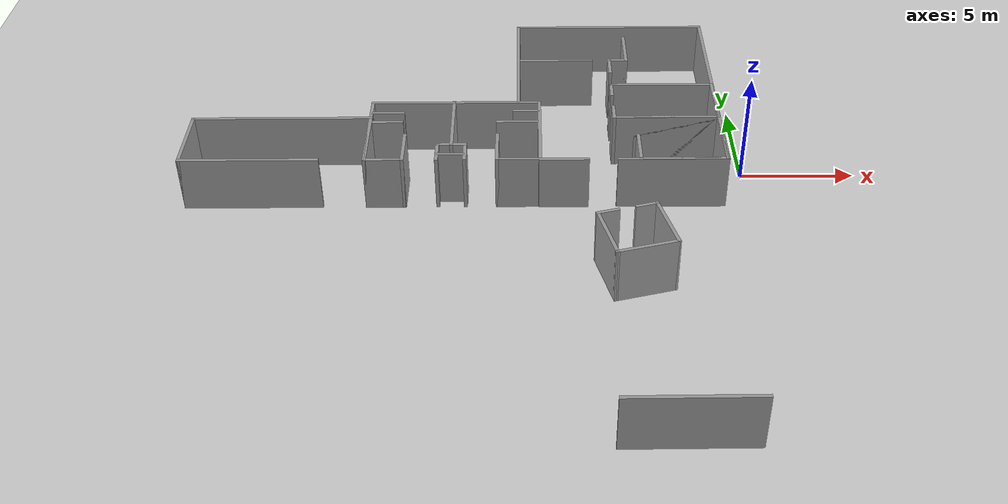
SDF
<sdf version="1.6">
 <world name="default">
  <model name="ground_plane">
   <static>1</static>
   <link name="link">
    <collision name="collision">
     <geometry><plane><normal>0 0 1</normal><size>100 100</size></plane></geometry>
     <surface><friction><ode><mu>100</mu><mu2>50</mu2></ode></friction></surface>
    </collision>
    <visual name="visual">
     <cast_shadows>0</cast_shadows>
     <geometry><plane><normal>0 0 1</normal><size>100 100</size></plane></geometry>
     <material>
      <script><uri>file://media/materials/scripts/gazebo.material</uri><name>Gazebo/Grey</name></script>
     </material>
    </visual>
   </link>
  </model>
  <model name="201/202">
   <pose>-12.7229 0.167067 0 0 -0 0</pose>
   <link name="Wall_10">
    <collision name="Wall_10_Collision">
     <geometry><box><size>7.62002 0.15 2.5</size></box></geometry>
     <pose>0 0 1.25 0 -0 0</pose>
    </collision>
    <visual name="Wall_10_Visual">
     <pose>0 0 1.25 0 -0 0</pose>
     <geometry><box><size>7.62002 0.15 2.5</size></box></geometry>
     <material>
      <script><uri>file://media/materials/scripts/gazebo.material</uri><name>Gazebo/Grey</name></script>
      <ambient>1 1 1 1</ambient>
     </material>
     <meta><layer>0</layer></meta>
    </visual>
    <pose>-0.004655 2.1906 0 0 -0 3.14159</pose>
   </link>
   <link name="Wall_11">
    <collision name="Wall_11_Collision">
     <geometry><box><size>4.572 0.15 2.5</size></box></geometry>
     <pose>0 0 1.25 0 -0 0</pose>
    </collision>
    <visual name="Wall_11_Visual">
     <pose>0 0 1.25 0 -0 0</pose>
     <geometry><box><size>4.572 0.15 2.5</size></box></geometry>
     <material>
      <script><uri>file://media/materials/scripts/gazebo.material</uri><name>Gazebo/Grey</name></script>
      <ambient>1 1 1 1</ambient>
     </material>
     <meta><layer>0</layer></meta>
    </visual>
    <pose>-3.73965 -0.020398 0 0 -0 -1.5708</pose>
   </link>
   <link name="Wall_13">
    <collision name="Wall_13_Collision">
     <geometry><box><size>2 0.15 2.5</size></box></geometry>
     <pose>0 0 1.25 0 -0 0</pose>
    </collision>
    <visual name="Wall_13_Visual">
     <pose>0 0 1.25 0 -0 0</pose>
     <geometry><box><size>2 0.15 2.5</size></box></geometry>
     <material>
      <script><uri>file://media/materials/scripts/gazebo.material</uri><name>Gazebo/Grey</name></script>
      <ambient>1 1 1 1</ambient>
     </material>
     <meta><layer>0</layer></meta>
    </visual>
    <pose>2.80535 -2.23095 0 0 -0 3.14159</pose>
   </link>
   <link name="Wall_14">
    <collision name="Wall_14_Collision">
     <geometry><box><size>2 0.15 2.5</size></box></geometry>
     <pose>0 0 1.25 0 -0 0</pose>
    </collision>
    <visual name="Wall_14_Visual">
     <pose>0 0 1.25 0 -0 0</pose>
     <geometry><box><size>2 0.15 2.5</size></box></geometry>
     <material>
      <script><uri>file://media/materials/scripts/gazebo.material</uri><name>Gazebo/Grey</name></script>
      <ambient>1 1 1 1</ambient>
     </material>
     <meta><layer>0</layer></meta>
    </visual>
    <pose>1.88035 -1.30595 0 0 -0 1.5708</pose>
   </link>
   <link name="Wall_16">
    <collision name="Wall_16_Collision">
     <geometry><box><size>3.5 0.15 2.5</size></box></geometry>
     <pose>0 0 1.25 0 -0 0</pose>
    </collision>
    <visual name="Wall_16_Visual">
     <pose>0 0 1.25 0 -0 0</pose>
     <geometry><box><size>3.5 0.15 2.5</size></box></geometry>
     <material>
      <script><uri>file://media/materials/scripts/gazebo.material</uri><name>Gazebo/Grey</name></script>
      <ambient>1 1 1 1</ambient>
     </material>
     <meta><layer>0</layer></meta>
    </visual>
    <pose>-0.091763 0.556398 0 0 -0 -1.5708</pose>
   </link>
   <link name="Wall_17">
    <collision name="Wall_17_Collision">
     <geometry><box><size>0.75 0.15 2.5</size></box></geometry>
     <pose>0 0 1.25 0 -0 0</pose>
    </collision>
    <visual name="Wall_17_Visual">
     <pose>0 0 1.25 0 -0 0</pose>
     <geometry><box><size>0.75 0.15 2.5</size></box></geometry>
     <material>
      <script><uri>file://media/materials/scripts/gazebo.material</uri><name>Gazebo/Grey</name></script>
      <ambient>1 1 1 1</ambient>
     </material>
     <meta><layer>0</layer></meta>
    </visual>
    <pose>0.208236 -1.1186 0 0 -0 0</pose>
   </link>
   <link name="Wall_18">
    <collision name="Wall_18_Collision">
     <geometry><box><size>1.25 0.15 2.5</size></box></geometry>
     <pose>0 0 1.25 0 -0 0</pose>
    </collision>
    <visual name="Wall_18_Visual">
     <pose>0 0 1.25 0 -0 0</pose>
     <geometry><box><size>1.25 0.15 2.5</size></box></geometry>
     <material>
      <script><uri>file://media/materials/scripts/gazebo.material</uri><name>Gazebo/Grey</name></script>
      <ambient>1 1 1 1</ambient>
     </material>
     <meta><layer>0</layer></meta>
    </visual>
    <pose>0.508237 -1.6686 0 0 -0 -1.5708</pose>
   </link>
   <link name="Wall_20">
    <collision name="Wall_20_Collision">
     <geometry><box><size>0.75 0.15 2.5</size></box></geometry>
     <pose>0 0 1.25 0 -0 0</pose>
    </collision>
    <visual name="Wall_20_Visual">
     <pose>0 0 1.25 0 -0 0</pose>
     <geometry><box><size>0.75 0.15 2.5</size></box></geometry>
     <material>
      <script><uri>file://media/materials/scripts/gazebo.material</uri><name>Gazebo/Grey</name></script>
      <ambient>1 1 1 1</ambient>
     </material>
     <meta><layer>0</layer></meta>
    </visual>
    <pose>-0.391763 -1.1186 0 0 -0 3.14159</pose>
   </link>
   <link name="Wall_21">
    <collision name="Wall_21_Collision">
     <geometry><box><size>1.25 0.15 2.5</size></box></geometry>
     <pose>0 0 1.25 0 -0 0</pose>
    </collision>
    <visual name="Wall_21_Visual">
     <pose>0 0 1.25 0 -0 0</pose>
     <geometry><box><size>1.25 0.15 2.5</size></box></geometry>
     <material>
      <script><uri>file://media/materials/scripts/gazebo.material</uri><name>Gazebo/Grey</name></script>
      <ambient>1 1 1 1</ambient>
     </material>
     <meta><layer>0</layer></meta>
    </visual>
    <pose>-0.691764 -1.6686 0 0 -0 -1.5708</pose>
   </link>
   <link name="Wall_23">
    <collision name="Wall_23_Collision">
     <geometry><box><size>1.75 0.15 2.5</size></box></geometry>
     <pose>0 0 1.25 0 -0 0</pose>
    </collision>
    <visual name="Wall_23_Visual">
     <pose>0 0 1.25 0 -0 0</pose>
     <geometry><box><size>1.75 0.15 2.5</size></box></geometry>
     <material>
      <script><uri>file://media/materials/scripts/gazebo.material</uri><name>Gazebo/Grey</name></script>
      <ambient>1 1 1 1</ambient>
     </material>
     <meta><layer>0</layer></meta>
    </visual>
    <pose>-2.93966 -2.2314 0 0 -0 0</pose>
   </link>
   <link name="Wall_24">
    <collision name="Wall_24_Collision">
     <geometry><box><size>2 0.15 2.5</size></box></geometry>
     <pose>0 0 1.25 0 -0 0</pose>
    </collision>
    <visual name="Wall_24_Visual">
     <pose>0 0 1.25 0 -0 0</pose>
     <geometry><box><size>2 0.15 2.5</size></box></geometry>
     <material>
      <script><uri>file://media/materials/scripts/gazebo.material</uri><name>Gazebo/Grey</name></script>
      <ambient>1 1 1 1</ambient>
     </material>
     <meta><layer>0</layer></meta>
    </visual>
    <pose>-2.13965 -1.3064 0 0 -0 1.5708</pose>
   </link>
   <link name="Wall_28">
    <collision name="Wall_28_Collision">
     <geometry><box><size>1.5 0.15 2.5</size></box></geometry>
     <pose>0 0 1.25 0 -0 0</pose>
    </collision>
    <visual name="Wall_28_Visual">
     <pose>0 0 1.25 0 -0 0</pose>
     <geometry><box><size>1.5 0.15 2.5</size></box></geometry>
     <material>
      <script><uri>file://media/materials/scripts/gazebo.material</uri><name>Gazebo/Grey</name></script>
      <ambient>1 1 1 1</ambient>
     </material>
     <meta><layer>0</layer></meta>
    </visual>
    <pose>-3.01876 1.34811 0 0 -0 0</pose>
   </link>
   <link name="Wall_30">
    <collision name="Wall_30_Collision">
     <geometry><box><size>1.5 0.15 2.5</size></box></geometry>
     <pose>0 0 1.25 0 -0 0</pose>
    </collision>
    <visual name="Wall_30_Visual">
     <pose>0 0 1.25 0 -0 0</pose>
     <geometry><box><size>1.5 0.15 2.5</size></box></geometry>
     <material>
      <script><uri>file://media/materials/scripts/gazebo.material</uri><name>Gazebo/Grey</name></script>
      <ambient>1 1 1 1</ambient>
     </material>
     <meta><layer>0</layer></meta>
    </visual>
    <pose>-3.03023 0.625411 0 0 -0 0</pose>
   </link>
   <link name="Wall_32">
    <collision name="Wall_32_Collision">
     <geometry><box><size>2 0.15 2.5</size></box></geometry>
     <pose>0 0 1.25 0 -0 0</pose>
    </collision>
    <visual name="Wall_32_Visual">
     <pose>0 0 1.25 0 -0 0</pose>
     <geometry><box><size>2 0.15 2.5</size></box></geometry>
     <material>
      <script><uri>file://media/materials/scripts/gazebo.material</uri><name>Gazebo/Grey</name></script>
      <ambient>1 1 1 1</ambient>
     </material>
     <meta><layer>0</layer></meta>
    </visual>
    <pose>2.81466 0.625411 0 0 -0 3.14159</pose>
   </link>
   <link name="Wall_34">
    <collision name="Wall_34_Collision">
     <geometry><box><size>1.25 0.15 2.5</size></box></geometry>
     <pose>0 0 1.25 0 -0 0</pose>
    </collision>
    <visual name="Wall_34_Visual">
     <pose>0 0 1.25 0 -0 0</pose>
     <geometry><box><size>1.25 0.15 2.5</size></box></geometry>
     <material>
      <script><uri>file://media/materials/scripts/gazebo.material</uri><name>Gazebo/Grey</name></script>
      <ambient>1 1 1 1</ambient>
     </material>
     <meta><layer>0</layer></meta>
    </visual>
    <pose>3.16672 1.48576 0 0 -0 3.14159</pose>
   </link>
   <link name="Wall_36">
    <collision name="Wall_36_Collision">
     <geometry><box><size>1.25 0.15 2.5</size></box></geometry>
     <pose>0 0 1.25 0 -0 0</pose>
    </collision>
    <visual name="Wall_36_Visual">
     <pose>0 0 1.25 0 -0 0</pose>
     <geometry><box><size>1.25 0.15 2.5</size></box></geometry>
     <material>
      <script><uri>file://media/materials/scripts/gazebo.material</uri><name>Gazebo/Grey</name></script>
      <ambient>1 1 1 1</ambient>
     </material>
     <meta><layer>0</layer></meta>
    </visual>
    <pose>-0.138273 -1.8524 0 0 -0 0</pose>
   </link>
   <link name="Wall_9">
    <collision name="Wall_9_Collision">
     <geometry><box><size>4.572 0.15 2.5</size></box></geometry>
     <pose>0 0 1.25 0 -0 0</pose>
    </collision>
    <visual name="Wall_9_Visual">
     <pose>0 0 1.25 0 -0 0</pose>
     <geometry><box><size>4.572 0.15 2.5</size></box></geometry>
     <material>
      <script><uri>file://media/materials/scripts/gazebo.material</uri><name>Gazebo/Grey</name></script>
      <ambient>1 1 1 1</ambient>
     </material>
     <meta><layer>0</layer></meta>
    </visual>
    <pose>3.73035 -0.020175 0 0 -0 1.5708</pose>
   </link>
   <static>1</static>
  </model>
  <model name="197A">
   <link name="Wall_33">
    <pose>3.925 0 0 0 -0 1.5708</pose>
    <visual name="Wall_33_Visual">
     <pose>0 0 1.25 0 -0 0</pose>
     <geometry><box><size>3.336 0.15 2.5</size></box></geometry>
     <material>
      <script><uri>file://media/materials/scripts/gazebo.material</uri><name>Gazebo/Grey</name></script>
      <ambient>1 1 1 1</ambient>
      <shader type="pixel"/>
     </material>
     <meta><layer>0</layer></meta>
    </visual>
    <collision name="Wall_33_Collision">
     <pose>0 0 1.25 0 -0 0</pose>
     <geometry><box><size>3.336 0.15 2.5</size></box></geometry>
     <surface>
      <friction>
       <ode><mu>1</mu><mu2>1</mu2><fdir1>0 0 0</fdir1><slip1>0</slip1><slip2>0</slip2></ode>
       <torsional>
        <coefficient>1</coefficient>
        <patch_radius>0</patch_radius>
        <surface_radius>0</surface_radius>
        <use_patch_radius>1</use_patch_radius>
        <ode><slip>0</slip></ode>
       </torsional>
      </friction>
      <bounce><restitution_coefficient>0</restitution_coefficient><threshold>1e+06</threshold></bounce>
      <contact>
       <collide_without_contact>0</collide_without_contact>
       <collide_without_contact_bitmask>1</collide_without_contact_bitmask>
       <collide_bitmask>1</collide_bitmask>
       <ode>
        <soft_cfm>0</soft_cfm>
        <soft_erp>0.2</soft_erp>
        <kp>1e+13</kp>
        <kd>1</kd>
        <max_vel>0.01</max_vel>
        <min_depth>0</min_depth>
       </ode>
       <bullet>
        <split_impulse>1</split_impulse>
        <split_impulse_penetration_threshold>-0.01</split_impulse_penetration_threshold>
        <soft_cfm>0</soft_cfm>
        <soft_erp>0.2</soft_erp>
        <kp>1e+13</kp>
        <kd>1</kd>
       </bullet>
      </contact>
     </surface>
    </collision>
   </link>
   <link name="Wall_34">
    <pose>0 1.593 0 0 -0 3.14159</pose>
    <visual name="Wall_34_Visual">
     <pose>0 0 1.25 0 -0 0</pose>
     <geometry><box><size>8 0.15 2.5</size></box></geometry>
     <material>
      <script><uri>file://media/materials/scripts/gazebo.material</uri><name>Gazebo/Grey</name></script>
      <ambient>1 1 1 1</ambient>
      <shader type="pixel"/>
     </material>
     <meta><layer>0</layer></meta>
    </visual>
    <collision name="Wall_34_Collision">
     <pose>0 0 1.25 0 -0 0</pose>
     <geometry><box><size>8 0.15 2.5</size></box></geometry>
     <surface>
      <friction>
       <ode><mu>1</mu><mu2>1</mu2><fdir1>0 0 0</fdir1><slip1>0</slip1><slip2>0</slip2></ode>
       <torsional>
        <coefficient>1</coefficient>
        <patch_radius>0</patch_radius>
        <surface_radius>0</surface_radius>
        <use_patch_radius>1</use_patch_radius>
        <ode><slip>0</slip></ode>
       </torsional>
      </friction>
      <bounce><restitution_coefficient>0</restitution_coefficient><threshold>1e+06</threshold></bounce>
      <contact>
       <collide_without_contact>0</collide_without_contact>
       <collide_without_contact_bitmask>1</collide_without_contact_bitmask>
       <collide_bitmask>1</collide_bitmask>
       <ode>
        <soft_cfm>0</soft_cfm>
        <soft_erp>0.2</soft_erp>
        <kp>1e+13</kp>
        <kd>1</kd>
        <max_vel>0.01</max_vel>
        <min_depth>0</min_depth>
       </ode>
       <bullet>
        <split_impulse>1</split_impulse>
        <split_impulse_penetration_threshold>-0.01</split_impulse_penetration_threshold>
        <soft_cfm>0</soft_cfm>
        <soft_erp>0.2</soft_erp>
        <kp>1e+13</kp>
        <kd>1</kd>
       </bullet>
      </contact>
     </surface>
    </collision>
   </link>
   <link name="Wall_35">
    <pose>-3.925 0 0 0 0 -1.5708</pose>
    <visual name="Wall_35_Visual">
     <pose>0 0 1.25 0 -0 0</pose>
     <geometry><box><size>3.336 0.15 2.5</size></box></geometry>
     <material>
      <script><uri>file://media/materials/scripts/gazebo.material</uri><name>Gazebo/Grey</name></script>
      <ambient>1 1 1 1</ambient>
      <shader type="pixel"/>
     </material>
     <meta><layer>0</layer></meta>
    </visual>
    <collision name="Wall_35_Collision">
     <pose>0 0 1.25 0 -0 0</pose>
     <geometry><box><size>3.336 0.15 2.5</size></box></geometry>
     <surface>
      <friction>
       <ode><mu>1</mu><mu2>1</mu2><fdir1>0 0 0</fdir1><slip1>0</slip1><slip2>0</slip2></ode>
       <torsional>
        <coefficient>1</coefficient>
        <patch_radius>0</patch_radius>
        <surface_radius>0</surface_radius>
        <use_patch_radius>1</use_patch_radius>
        <ode><slip>0</slip></ode>
       </torsional>
      </friction>
      <bounce><restitution_coefficient>0</restitution_coefficient><threshold>1e+06</threshold></bounce>
      <contact>
       <collide_without_contact>0</collide_without_contact>
       <collide_without_contact_bitmask>1</collide_without_contact_bitmask>
       <collide_bitmask>1</collide_bitmask>
       <ode>
        <soft_cfm>0</soft_cfm>
        <soft_erp>0.2</soft_erp>
        <kp>1e+13</kp>
        <kd>1</kd>
        <max_vel>0.01</max_vel>
        <min_depth>0</min_depth>
       </ode>
       <bullet>
        <split_impulse>1</split_impulse>
        <split_impulse_penetration_threshold>-0.01</split_impulse_penetration_threshold>
        <soft_cfm>0</soft_cfm>
        <soft_erp>0.2</soft_erp>
        <kp>1e+13</kp>
        <kd>1</kd>
       </bullet>
      </contact>
     </surface>
    </collision>
   </link>
   <link name="Wall_37">
    <pose>-1 -1.593 0 0 -0 0</pose>
    <visual name="Wall_37_Visual">
     <pose>0 0 1.25 0 -0 0</pose>
     <geometry><box><size>6 0.15 2.5</size></box></geometry>
     <material>
      <script><uri>file://media/materials/scripts/gazebo.material</uri><name>Gazebo/Grey</name></script>
      <ambient>1 1 1 1</ambient>
      <shader type="pixel"/>
     </material>
     <meta><layer>0</layer></meta>
    </visual>
    <collision name="Wall_37_Collision">
     <pose>0 0 1.25 0 -0 0</pose>
     <geometry><box><size>6 0.15 2.5</size></box></geometry>
     <surface>
      <friction>
       <ode><mu>1</mu><mu2>1</mu2><fdir1>0 0 0</fdir1><slip1>0</slip1><slip2>0</slip2></ode>
       <torsional>
        <coefficient>1</coefficient>
        <patch_radius>0</patch_radius>
        <surface_radius>0</surface_radius>
        <use_patch_radius>1</use_patch_radius>
        <ode><slip>0</slip></ode>
       </torsional>
      </friction>
      <bounce><restitution_coefficient>0</restitution_coefficient><threshold>1e+06</threshold></bounce>
      <contact>
       <collide_without_contact>0</collide_without_contact>
       <collide_without_contact_bitmask>1</collide_without_contact_bitmask>
       <collide_bitmask>1</collide_bitmask>
       <ode>
        <soft_cfm>0</soft_cfm>
        <soft_erp>0.2</soft_erp>
        <kp>1e+13</kp>
        <kd>1</kd>
        <max_vel>0.01</max_vel>
        <min_depth>0</min_depth>
       </ode>
       <bullet>
        <split_impulse>1</split_impulse>
        <split_impulse_penetration_threshold>-0.01</split_impulse_penetration_threshold>
        <soft_cfm>0</soft_cfm>
        <soft_erp>0.2</soft_erp>
        <kp>1e+13</kp>
        <kd>1</kd>
       </bullet>
      </contact>
     </surface>
    </collision>
   </link>
   <static>1</static>
   <pose>-20.3831 -0.454376 0 0 -0 0</pose>
  </model>
  <model name="195">
   <pose>-5.20587 -6.72297 0 0 -0 0.258279</pose>
   <link name="Wall_52">
    <collision name="Wall_52_Collision">
     <geometry><box><size>2.667 0.15 2.5</size></box></geometry>
     <pose>0 0 1.25 0 -0 0</pose>
    </collision>
    <visual name="Wall_52_Visual">
     <pose>0 0 1.25 0 -0 0</pose>
     <geometry><box><size>2.667 0.15 2.5</size></box></geometry>
     <material>
      <script><uri>file://media/materials/scripts/gazebo.material</uri><name>Gazebo/Grey</name></script>
      <ambient>1 1 1 1</ambient>
     </material>
     <meta><layer>0</layer></meta>
    </visual>
    <pose>-0.000138 -1.2585 0 0 -0 0</pose>
   </link>
   <link name="Wall_53">
    <collision name="Wall_53_Collision">
     <geometry><box><size>2.667 0.15 2.5</size></box></geometry>
     <pose>0 0 1.25 0 -0 0</pose>
    </collision>
    <visual name="Wall_53_Visual">
     <pose>0 0 1.25 0 -0 0</pose>
     <geometry><box><size>2.667 0.15 2.5</size></box></geometry>
     <material>
      <script><uri>file://media/materials/scripts/gazebo.material</uri><name>Gazebo/Grey</name></script>
      <ambient>1 1 1 1</ambient>
     </material>
     <meta><layer>0</layer></meta>
    </visual>
    <pose>1.2585 0 0 0 -0 1.57069</pose>
   </link>
   <link name="Wall_55">
    <collision name="Wall_55_Collision">
     <geometry><box><size>2.667 0.15 2.5</size></box></geometry>
     <pose>0 0 1.25 0 -0 0</pose>
    </collision>
    <visual name="Wall_55_Visual">
     <pose>0 0 1.25 0 -0 0</pose>
     <geometry><box><size>2.667 0.15 2.5</size></box></geometry>
     <material>
      <script><uri>file://media/materials/scripts/gazebo.material</uri><name>Gazebo/Grey</name></script>
      <ambient>1 1 1 1</ambient>
     </material>
     <meta><layer>0</layer></meta>
    </visual>
    <pose>-1.2585 0 0 0 -0 -1.57091</pose>
   </link>
   <link name="Wall_57">
    <collision name="Wall_57_Collision">
     <geometry><box><size>1 0.15 2.5</size></box></geometry>
     <pose>0 0 1.25 0 -0 0</pose>
    </collision>
    <visual name="Wall_57_Visual">
     <pose>0 0 1.25 0 -0 0</pose>
     <geometry><box><size>1 0.15 2.5</size></box></geometry>
     <material>
      <script><uri>file://media/materials/scripts/gazebo.material</uri><name>Gazebo/Grey</name></script>
      <ambient>1 1 1 1</ambient>
     </material>
     <meta><layer>0</layer></meta>
    </visual>
    <pose>0.833639 1.2585 0 0 -0 3.14159</pose>
   </link>
   <link name="Wall_59">
    <collision name="Wall_59_Collision">
     <geometry><box><size>1 0.15 2.5</size></box></geometry>
     <pose>0 0 1.25 0 -0 0</pose>
    </collision>
    <visual name="Wall_59_Visual">
     <pose>0 0 1.25 0 -0 0</pose>
     <geometry><box><size>1 0.15 2.5</size></box></geometry>
     <material>
      <script><uri>file://media/materials/scripts/gazebo.material</uri><name>Gazebo/Grey</name></script>
      <ambient>1 1 1 1</ambient>
     </material>
     <meta><layer>0</layer></meta>
    </visual>
    <pose>-0.833361 1.2585 0 0 -0 3.14159</pose>
   </link>
   <static>1</static>
  </model>
  <model name="4m_wall">
   <link name="Wall_0">
    <pose>0.112549 0.000563 0 0 0 -3.13659</pose>
    <inertial>
     <inertia><ixx>0</ixx><ixy>0</ixy><ixz>0</ixz><iyy>0</iyy><iyz>0</iyz><izz>0</izz></inertia>
     <mass>0</mass>
    </inertial>
    <visual name="Wall_0_Visual">
     <pose>0 0 1.25 0 -0 0</pose>
     <geometry><box><size>5.16874 0.15 2.5</size></box></geometry>
     <material>
      <script><uri>file://media/materials/scripts/gazebo.material</uri><name>Gazebo/Grey</name></script>
      <ambient>1 1 1 1</ambient>
      <shader type="pixel"/>
     </material>
     <meta><layer>0</layer></meta>
    </visual>
    <collision name="Wall_0_Collision">
     <pose>0 0 1.25 0 -0 0</pose>
     <geometry><box><size>5.16874 0.15 2.5</size></box></geometry>
     <surface>
      <friction>
       <ode><mu>1</mu><mu2>1</mu2><fdir1>0 0 0</fdir1><slip1>0</slip1><slip2>0</slip2></ode>
       <torsional>
        <coefficient>1</coefficient>
        <patch_radius>0</patch_radius>
        <surface_radius>0</surface_radius>
        <use_patch_radius>1</use_patch_radius>
        <ode><slip>0</slip></ode>
       </torsional>
      </friction>
      <bounce><restitution_coefficient>0</restitution_coefficient><threshold>1e+06</threshold></bounce>
      <contact>
       <collide_without_contact>0</collide_without_contact>
       <collide_without_contact_bitmask>1</collide_without_contact_bitmask>
       <collide_bitmask>1</collide_bitmask>
       <ode>
        <soft_cfm>0</soft_cfm>
        <soft_erp>0.2</soft_erp>
        <kp>1e+13</kp>
        <kd>1</kd>
        <max_vel>0.01</max_vel>
        <min_depth>0</min_depth>
       </ode>
       <bullet>
        <split_impulse>1</split_impulse>
        <split_impulse_penetration_threshold>-0.01</split_impulse_penetration_threshold>
        <soft_cfm>0</soft_cfm>
        <soft_erp>0.2</soft_erp>
        <kp>1e+13</kp>
        <kd>1</kd>
       </bullet>
      </contact>
     </surface>
    </collision>
   </link>
   <static>1</static>
   <pose>-4.05619 -15.9535 0 0 -0 0</pose>
  </model>
  <model name="503">
   <link name="Wall_0">
    <pose>-4.4495 2.22528 0 0 -0 1.5708</pose>
    <inertial>
     <inertia><ixx>0</ixx><ixy>0</ixy><ixz>0</ixz><iyy>0</iyy><iyz>0</iyz><izz>0</izz></inertia>
     <mass>0</mass>
    </inertial>
    <visual name="Wall_0_Visual">
     <pose>0 0 1.25 0 -0 0</pose>
     <geometry><box><size>6.78135 0.15 2.5</size></box></geometry>
     <material>
      <script><uri>file://media/materials/scripts/gazebo.material</uri><name>Gazebo/Grey</name></script>
      <ambient>1 1 1 1</ambient>
      <shader type="pixel"/>
     </material>
     <meta><layer>0</layer></meta>
    </visual>
    <collision name="Wall_0_Collision">
     <pose>0 0 1.25 0 -0 0</pose>
     <geometry><box><size>6.78135 0.15 2.5</size></box></geometry>
     <surface>
      <friction>
       <ode><mu>1</mu><mu2>1</mu2><fdir1>0 0 0</fdir1><slip1>0</slip1><slip2>0</slip2></ode>
       <torsional>
        <coefficient>1</coefficient>
        <patch_radius>0</patch_radius>
        <surface_radius>0</surface_radius>
        <use_patch_radius>1</use_patch_radius>
        <ode><slip>0</slip></ode>
       </torsional>
      </friction>
      <bounce><restitution_coefficient>0</restitution_coefficient><threshold>1e+06</threshold></bounce>
      <contact>
       <collide_without_contact>0</collide_without_contact>
       <collide_without_contact_bitmask>1</collide_without_contact_bitmask>
       <collide_bitmask>1</collide_bitmask>
       <ode>
        <soft_cfm>0</soft_cfm>
        <soft_erp>0.2</soft_erp>
        <kp>1e+13</kp>
        <kd>1</kd>
        <max_vel>0.01</max_vel>
        <min_depth>0</min_depth>
       </ode>
       <bullet>
        <split_impulse>1</split_impulse>
        <split_impulse_penetration_threshold>-0.01</split_impulse_penetration_threshold>
        <soft_cfm>0</soft_cfm>
        <soft_erp>0.2</soft_erp>
        <kp>1e+13</kp>
        <kd>1</kd>
       </bullet>
      </contact>
     </surface>
    </collision>
   </link>
   <link name="Wall_1">
    <pose>0 5.64 0 0 -0 0</pose>
    <visual name="Wall_1_Visual">
     <pose>0 0 1.25 0 -0 0</pose>
     <geometry><box><size>9.049 0.15 2.5</size></box></geometry>
     <material>
      <script><uri>file://media/materials/scripts/gazebo.material</uri><name>Gazebo/Grey</name></script>
      <ambient>1 1 1 1</ambient>
      <shader type="pixel"/>
     </material>
     <meta><layer>0</layer></meta>
    </visual>
    <collision name="Wall_1_Collision">
     <pose>0 0 1.25 0 -0 0</pose>
     <geometry><box><size>9.049 0.15 2.5</size></box></geometry>
     <surface>
      <friction>
       <ode><mu>1</mu><mu2>1</mu2><fdir1>0 0 0</fdir1><slip1>0</slip1><slip2>0</slip2></ode>
       <torsional>
        <coefficient>1</coefficient>
        <patch_radius>0</patch_radius>
        <surface_radius>0</surface_radius>
        <use_patch_radius>1</use_patch_radius>
        <ode><slip>0</slip></ode>
       </torsional>
      </friction>
      <bounce><restitution_coefficient>0</restitution_coefficient><threshold>1e+06</threshold></bounce>
      <contact>
       <collide_without_contact>0</collide_without_contact>
       <collide_without_contact_bitmask>1</collide_without_contact_bitmask>
       <collide_bitmask>1</collide_bitmask>
       <ode>
        <soft_cfm>0</soft_cfm>
        <soft_erp>0.2</soft_erp>
        <kp>1e+13</kp>
        <kd>1</kd>
        <max_vel>0.01</max_vel>
        <min_depth>0</min_depth>
       </ode>
       <bullet>
        <split_impulse>1</split_impulse>
        <split_impulse_penetration_threshold>-0.01</split_impulse_penetration_threshold>
        <soft_cfm>0</soft_cfm>
        <soft_erp>0.2</soft_erp>
        <kp>1e+13</kp>
        <kd>1</kd>
       </bullet>
      </contact>
     </surface>
    </collision>
   </link>
   <link name="Wall_2">
    <pose>4.4495 0 0 0 0 -1.5708</pose>
    <visual name="Wall_2_Visual">
     <pose>0 0 1.25 0 -0 0</pose>
     <geometry><box><size>11.43 0.15 2.5</size></box></geometry>
     <material>
      <script><uri>file://media/materials/scripts/gazebo.material</uri><name>Gazebo/Grey</name></script>
      <ambient>1 1 1 1</ambient>
      <shader type="pixel"/>
     </material>
     <meta><layer>0</layer></meta>
    </visual>
    <collision name="Wall_2_Collision">
     <pose>0 0 1.25 0 -0 0</pose>
     <geometry><box><size>11.43 0.15 2.5</size></box></geometry>
     <surface>
      <friction>
       <ode><mu>1</mu><mu2>1</mu2><fdir1>0 0 0</fdir1><slip1>0</slip1><slip2>0</slip2></ode>
       <torsional>
        <coefficient>1</coefficient>
        <patch_radius>0</patch_radius>
        <surface_radius>0</surface_radius>
        <use_patch_radius>1</use_patch_radius>
        <ode><slip>0</slip></ode>
       </torsional>
      </friction>
      <bounce><restitution_coefficient>0</restitution_coefficient><threshold>1e+06</threshold></bounce>
      <contact>
       <collide_without_contact>0</collide_without_contact>
       <collide_without_contact_bitmask>1</collide_without_contact_bitmask>
       <collide_bitmask>1</collide_bitmask>
       <ode>
        <soft_cfm>0</soft_cfm>
        <soft_erp>0.2</soft_erp>
        <kp>1e+13</kp>
        <kd>1</kd>
        <max_vel>0.01</max_vel>
        <min_depth>0</min_depth>
       </ode>
       <bullet>
        <split_impulse>1</split_impulse>
        <split_impulse_penetration_threshold>-0.01</split_impulse_penetration_threshold>
        <soft_cfm>0</soft_cfm>
        <soft_erp>0.2</soft_erp>
        <kp>1e+13</kp>
        <kd>1</kd>
       </bullet>
      </contact>
     </surface>
    </collision>
   </link>
   <link name="Wall_5">
    <pose>2.1495 -5.64 0 0 -0 3.14159</pose>
    <visual name="Wall_5_Visual">
     <pose>0 0 1.25 0 -0 0</pose>
     <geometry><box><size>4.75 0.15 2.5</size></box></geometry>
     <material>
      <script><uri>file://media/materials/scripts/gazebo.material</uri><name>Gazebo/Grey</name></script>
      <ambient>1 1 1 1</ambient>
      <shader type="pixel"/>
     </material>
     <meta><layer>0</layer></meta>
    </visual>
    <collision name="Wall_5_Collision">
     <pose>0 0 1.25 0 -0 0</pose>
     <geometry><box><size>4.75 0.15 2.5</size></box></geometry>
     <surface>
      <friction>
       <ode><mu>1</mu><mu2>1</mu2><fdir1>0 0 0</fdir1><slip1>0</slip1><slip2>0</slip2></ode>
       <torsional>
        <coefficient>1</coefficient>
        <patch_radius>0</patch_radius>
        <surface_radius>0</surface_radius>
        <use_patch_radius>1</use_patch_radius>
        <ode><slip>0</slip></ode>
       </torsional>
      </friction>
      <bounce><restitution_coefficient>0</restitution_coefficient><threshold>1e+06</threshold></bounce>
      <contact>
       <collide_without_contact>0</collide_without_contact>
       <collide_without_contact_bitmask>1</collide_without_contact_bitmask>
       <collide_bitmask>1</collide_bitmask>
       <ode>
        <soft_cfm>0</soft_cfm>
        <soft_erp>0.2</soft_erp>
        <kp>1e+13</kp>
        <kd>1</kd>
        <max_vel>0.01</max_vel>
        <min_depth>0</min_depth>
       </ode>
       <bullet>
        <split_impulse>1</split_impulse>
        <split_impulse_penetration_threshold>-0.01</split_impulse_penetration_threshold>
        <soft_cfm>0</soft_cfm>
        <soft_erp>0.2</soft_erp>
        <kp>1e+13</kp>
        <kd>1</kd>
       </bullet>
      </contact>
     </surface>
    </collision>
   </link>
   <link name="Wall_7">
    <pose>-2.4985 -5.64 0 0 -0 3.14159</pose>
    <visual name="Wall_7_Visual">
     <pose>0 0 1.25 0 -0 0</pose>
     <geometry><box><size>2.146 0.15 2.5</size></box></geometry>
     <material>
      <script><uri>file://media/materials/scripts/gazebo.material</uri><name>Gazebo/Grey</name></script>
      <ambient>1 1 1 1</ambient>
      <shader type="pixel"/>
     </material>
     <meta><layer>0</layer></meta>
    </visual>
    <collision name="Wall_7_Collision">
     <pose>0 0 1.25 0 -0 0</pose>
     <geometry><box><size>2.146 0.15 2.5</size></box></geometry>
     <surface>
      <friction>
       <ode><mu>1</mu><mu2>1</mu2><fdir1>0 0 0</fdir1><slip1>0</slip1><slip2>0</slip2></ode>
       <torsional>
        <coefficient>1</coefficient>
        <patch_radius>0</patch_radius>
        <surface_radius>0</surface_radius>
        <use_patch_radius>1</use_patch_radius>
        <ode><slip>0</slip></ode>
       </torsional>
      </friction>
      <bounce><restitution_coefficient>0</restitution_coefficient><threshold>1e+06</threshold></bounce>
      <contact>
       <collide_without_contact>0</collide_without_contact>
       <collide_without_contact_bitmask>1</collide_without_contact_bitmask>
       <collide_bitmask>1</collide_bitmask>
       <ode>
        <soft_cfm>0</soft_cfm>
        <soft_erp>0.2</soft_erp>
        <kp>1e+13</kp>
        <kd>1</kd>
        <max_vel>0.01</max_vel>
        <min_depth>0</min_depth>
       </ode>
       <bullet>
        <split_impulse>1</split_impulse>
        <split_impulse_penetration_threshold>-0.01</split_impulse_penetration_threshold>
        <soft_cfm>0</soft_cfm>
        <soft_erp>0.2</soft_erp>
        <kp>1e+13</kp>
        <kd>1</kd>
       </bullet>
      </contact>
     </surface>
    </collision>
   </link>
   <static>1</static>
   <pose>-5.48059 3.54113 0 0 -0 0</pose>
  </model>
  <model name="503A/B">
   <link name="Wall_102">
    <pose>0.4765 -2.94601 0 0 -0 0</pose>
    <visual name="Wall_102_Visual">
     <pose>0 0 1.25 0 -0 0</pose>
     <geometry><box><size>3.81 0.15 2.5</size></box></geometry>
     <material>
      <script><uri>file://media/materials/scripts/gazebo.material</uri><name>Gazebo/Grey</name></script>
      <ambient>1 1 1 1</ambient>
      <shader type="pixel"/>
     </material>
     <meta><layer>0</layer></meta>
    </visual>
    <collision name="Wall_102_Collision">
     <pose>0 0 1.25 0 -0 0</pose>
     <geometry><box><size>3.81 0.15 2.5</size></box></geometry>
     <surface>
      <friction>
       <ode><mu>1</mu><mu2>1</mu2><fdir1>0 0 0</fdir1><slip1>0</slip1><slip2>0</slip2></ode>
       <torsional>
        <coefficient>1</coefficient>
        <patch_radius>0</patch_radius>
        <surface_radius>0</surface_radius>
        <use_patch_radius>1</use_patch_radius>
        <ode><slip>0</slip></ode>
       </torsional>
      </friction>
      <bounce><restitution_coefficient>0</restitution_coefficient><threshold>1e+06</threshold></bounce>
      <contact>
       <collide_without_contact>0</collide_without_contact>
       <collide_without_contact_bitmask>1</collide_without_contact_bitmask>
       <collide_bitmask>1</collide_bitmask>
       <ode>
        <soft_cfm>0</soft_cfm>
        <soft_erp>0.2</soft_erp>
        <kp>1e+13</kp>
        <kd>1</kd>
        <max_vel>0.01</max_vel>
        <min_depth>0</min_depth>
       </ode>
       <bullet>
        <split_impulse>1</split_impulse>
        <split_impulse_penetration_threshold>-0.01</split_impulse_penetration_threshold>
        <soft_cfm>0</soft_cfm>
        <soft_erp>0.2</soft_erp>
        <kp>1e+13</kp>
        <kd>1</kd>
       </bullet>
      </contact>
     </surface>
    </collision>
   </link>
   <link name="Wall_103">
    <pose>2.3065 -1.35401 0 0 -0 1.5708</pose>
    <visual name="Wall_103_Visual">
     <pose>0 0 1.25 0 -0 0</pose>
     <geometry><box><size>3.334 0.15 2.5</size></box></geometry>
     <material>
      <script><uri>file://media/materials/scripts/gazebo.material</uri><name>Gazebo/Grey</name></script>
      <ambient>1 1 1 1</ambient>
      <shader type="pixel"/>
     </material>
     <meta><layer>0</layer></meta>
    </visual>
    <collision name="Wall_103_Collision">
     <pose>0 0 1.25 0 -0 0</pose>
     <geometry><box><size>3.334 0.15 2.5</size></box></geometry>
     <surface>
      <friction>
       <ode><mu>1</mu><mu2>1</mu2><fdir1>0 0 0</fdir1><slip1>0</slip1><slip2>0</slip2></ode>
       <torsional>
        <coefficient>1</coefficient>
        <patch_radius>0</patch_radius>
        <surface_radius>0</surface_radius>
        <use_patch_radius>1</use_patch_radius>
        <ode><slip>0</slip></ode>
       </torsional>
      </friction>
      <bounce><restitution_coefficient>0</restitution_coefficient><threshold>1e+06</threshold></bounce>
      <contact>
       <collide_without_contact>0</collide_without_contact>
       <collide_without_contact_bitmask>1</collide_without_contact_bitmask>
       <collide_bitmask>1</collide_bitmask>
       <ode>
        <soft_cfm>0</soft_cfm>
        <soft_erp>0.2</soft_erp>
        <kp>1e+13</kp>
        <kd>1</kd>
        <max_vel>0.01</max_vel>
        <min_depth>0</min_depth>
       </ode>
       <bullet>
        <split_impulse>1</split_impulse>
        <split_impulse_penetration_threshold>-0.01</split_impulse_penetration_threshold>
        <soft_cfm>0</soft_cfm>
        <soft_erp>0.2</soft_erp>
        <kp>1e+13</kp>
        <kd>1</kd>
       </bullet>
      </contact>
     </surface>
    </collision>
   </link>
   <link name="Wall_104">
    <pose>0.4765 0.237992 0 0 -0 3.14159</pose>
    <visual name="Wall_104_Visual">
     <pose>0 0 1.25 0 -0 0</pose>
     <geometry><box><size>3.81 0.15 2.5</size></box></geometry>
     <material>
      <script><uri>file://media/materials/scripts/gazebo.material</uri><name>Gazebo/Grey</name></script>
      <ambient>1 1 1 1</ambient>
      <shader type="pixel"/>
     </material>
     <meta><layer>0</layer></meta>
    </visual>
    <collision name="Wall_104_Collision">
     <pose>0 0 1.25 0 -0 0</pose>
     <geometry><box><size>3.81 0.15 2.5</size></box></geometry>
     <surface>
      <friction>
       <ode><mu>1</mu><mu2>1</mu2><fdir1>0 0 0</fdir1><slip1>0</slip1><slip2>0</slip2></ode>
       <torsional>
        <coefficient>1</coefficient>
        <patch_radius>0</patch_radius>
        <surface_radius>0</surface_radius>
        <use_patch_radius>1</use_patch_radius>
        <ode><slip>0</slip></ode>
       </torsional>
      </friction>
      <bounce><restitution_coefficient>0</restitution_coefficient><threshold>1e+06</threshold></bounce>
      <contact>
       <collide_without_contact>0</collide_without_contact>
       <collide_without_contact_bitmask>1</collide_without_contact_bitmask>
       <collide_bitmask>1</collide_bitmask>
       <ode>
        <soft_cfm>0</soft_cfm>
        <soft_erp>0.2</soft_erp>
        <kp>1e+13</kp>
        <kd>1</kd>
        <max_vel>0.01</max_vel>
        <min_depth>0</min_depth>
       </ode>
       <bullet>
        <split_impulse>1</split_impulse>
        <split_impulse_penetration_threshold>-0.01</split_impulse_penetration_threshold>
        <soft_cfm>0</soft_cfm>
        <soft_erp>0.2</soft_erp>
        <kp>1e+13</kp>
        <kd>1</kd>
       </bullet>
      </contact>
     </surface>
    </collision>
   </link>
   <link name="Wall_106">
    <pose>-1.3535 -2.06473 0 0 -0 1.5708</pose>
    <inertial>
     <inertia><ixx>0</ixx><ixy>0</ixy><ixz>0</ixz><iyy>0</iyy><iyz>0</iyz><izz>0</izz></inertia>
     <mass>0</mass>
    </inertial>
    <visual name="Wall_106_Visual">
     <pose>0 0 1.25 0 -0 0</pose>
     <geometry><box><size>1.93528 0.15 2.5</size></box></geometry>
     <material>
      <script><uri>file://media/materials/scripts/gazebo.material</uri><name>Gazebo/Grey</name></script>
      <ambient>1 1 1 1</ambient>
      <shader type="pixel"/>
     </material>
     <meta><layer>0</layer></meta>
    </visual>
    <collision name="Wall_106_Collision">
     <pose>0 0 1.25 0 -0 0</pose>
     <geometry><box><size>1.93528 0.15 2.5</size></box></geometry>
     <surface>
      <friction>
       <ode><mu>1</mu><mu2>1</mu2><fdir1>0 0 0</fdir1><slip1>0</slip1><slip2>0</slip2></ode>
       <torsional>
        <coefficient>1</coefficient>
        <patch_radius>0</patch_radius>
        <surface_radius>0</surface_radius>
        <use_patch_radius>1</use_patch_radius>
        <ode><slip>0</slip></ode>
       </torsional>
      </friction>
      <bounce><restitution_coefficient>0</restitution_coefficient><threshold>1e+06</threshold></bounce>
      <contact>
       <collide_without_contact>0</collide_without_contact>
       <collide_without_contact_bitmask>1</collide_without_contact_bitmask>
       <collide_bitmask>1</collide_bitmask>
       <ode>
        <soft_cfm>0</soft_cfm>
        <soft_erp>0.2</soft_erp>
        <kp>1e+13</kp>
        <kd>1</kd>
        <max_vel>0.01</max_vel>
        <min_depth>0</min_depth>
       </ode>
       <bullet>
        <split_impulse>1</split_impulse>
        <split_impulse_penetration_threshold>-0.01</split_impulse_penetration_threshold>
        <soft_cfm>0</soft_cfm>
        <soft_erp>0.2</soft_erp>
        <kp>1e+13</kp>
        <kd>1</kd>
       </bullet>
      </contact>
     </surface>
    </collision>
   </link>
   <link name="Wall_108">
    <pose>0 0.237992 0 0 -0 3.14159</pose>
    <visual name="Wall_108_Visual">
     <pose>0 0 1.25 0 -0 0</pose>
     <geometry><box><size>4.763 0.15 2.5</size></box></geometry>
     <material>
      <script><uri>file://media/materials/scripts/gazebo.material</uri><name>Gazebo/Grey</name></script>
      <ambient>1 1 1 1</ambient>
      <shader type="pixel"/>
     </material>
     <meta><layer>0</layer></meta>
    </visual>
    <collision name="Wall_108_Collision">
     <pose>0 0 1.25 0 -0 0</pose>
     <geometry><box><size>4.763 0.15 2.5</size></box></geometry>
     <surface>
      <friction>
       <ode><mu>1</mu><mu2>1</mu2><fdir1>0 0 0</fdir1><slip1>0</slip1><slip2>0</slip2></ode>
       <torsional>
        <coefficient>1</coefficient>
        <patch_radius>0</patch_radius>
        <surface_radius>0</surface_radius>
        <use_patch_radius>1</use_patch_radius>
        <ode><slip>0</slip></ode>
       </torsional>
      </friction>
      <bounce><restitution_coefficient>0</restitution_coefficient><threshold>1e+06</threshold></bounce>
      <contact>
       <collide_without_contact>0</collide_without_contact>
       <collide_without_contact_bitmask>1</collide_without_contact_bitmask>
       <collide_bitmask>1</collide_bitmask>
       <ode>
        <soft_cfm>0</soft_cfm>
        <soft_erp>0.2</soft_erp>
        <kp>1e+13</kp>
        <kd>1</kd>
        <max_vel>0.01</max_vel>
        <min_depth>0</min_depth>
       </ode>
       <bullet>
        <split_impulse>1</split_impulse>
        <split_impulse_penetration_threshold>-0.01</split_impulse_penetration_threshold>
        <soft_cfm>0</soft_cfm>
        <soft_erp>0.2</soft_erp>
        <kp>1e+13</kp>
        <kd>1</kd>
       </bullet>
      </contact>
     </surface>
    </collision>
   </link>
   <link name="Wall_110">
    <pose>0 2.94599 0 0 -0 0</pose>
    <visual name="Wall_110_Visual">
     <pose>0 0 1.25 0 -0 0</pose>
     <geometry><box><size>4.763 0.15 2.5</size></box></geometry>
     <material>
      <script><uri>file://media/materials/scripts/gazebo.material</uri><name>Gazebo/Grey</name></script>
      <ambient>1 1 1 1</ambient>
      <shader type="pixel"/>
     </material>
     <meta><layer>0</layer></meta>
    </visual>
    <collision name="Wall_110_Collision">
     <pose>0 0 1.25 0 -0 0</pose>
     <geometry><box><size>4.763 0.15 2.5</size></box></geometry>
     <surface>
      <friction>
       <ode><mu>1</mu><mu2>1</mu2><fdir1>0 0 0</fdir1><slip1>0</slip1><slip2>0</slip2></ode>
       <torsional>
        <coefficient>1</coefficient>
        <patch_radius>0</patch_radius>
        <surface_radius>0</surface_radius>
        <use_patch_radius>1</use_patch_radius>
        <ode><slip>0</slip></ode>
       </torsional>
      </friction>
      <bounce><restitution_coefficient>0</restitution_coefficient><threshold>1e+06</threshold></bounce>
      <contact>
       <collide_without_contact>0</collide_without_contact>
       <collide_without_contact_bitmask>1</collide_without_contact_bitmask>
       <collide_bitmask>1</collide_bitmask>
       <ode>
        <soft_cfm>0</soft_cfm>
        <soft_erp>0.2</soft_erp>
        <kp>1e+13</kp>
        <kd>1</kd>
        <max_vel>0.01</max_vel>
        <min_depth>0</min_depth>
       </ode>
       <bullet>
        <split_impulse>1</split_impulse>
        <split_impulse_penetration_threshold>-0.01</split_impulse_penetration_threshold>
        <soft_cfm>0</soft_cfm>
        <soft_erp>0.2</soft_erp>
        <kp>1e+13</kp>
        <kd>1</kd>
       </bullet>
      </contact>
     </surface>
    </collision>
   </link>
   <link name="Wall_111">
    <pose>2.3065 1.59199 0 0 0 -1.5708</pose>
    <visual name="Wall_111_Visual">
     <pose>0 0 1.25 0 -0 0</pose>
     <geometry><box><size>2.85803 0.15 2.5</size></box></geometry>
     <material>
      <script><uri>file://media/materials/scripts/gazebo.material</uri><name>Gazebo/Grey</name></script>
      <ambient>1 1 1 1</ambient>
      <shader type="pixel"/>
     </material>
     <meta><layer>0</layer></meta>
    </visual>
    <collision name="Wall_111_Collision">
     <pose>0 0 1.25 0 -0 0</pose>
     <geometry><box><size>2.85803 0.15 2.5</size></box></geometry>
     <surface>
      <friction>
       <ode><mu>1</mu><mu2>1</mu2><fdir1>0 0 0</fdir1><slip1>0</slip1><slip2>0</slip2></ode>
       <torsional>
        <coefficient>1</coefficient>
        <patch_radius>0</patch_radius>
        <surface_radius>0</surface_radius>
        <use_patch_radius>1</use_patch_radius>
        <ode><slip>0</slip></ode>
       </torsional>
      </friction>
      <bounce><restitution_coefficient>0</restitution_coefficient><threshold>1e+06</threshold></bounce>
      <contact>
       <collide_without_contact>0</collide_without_contact>
       <collide_without_contact_bitmask>1</collide_without_contact_bitmask>
       <collide_bitmask>1</collide_bitmask>
       <ode>
        <soft_cfm>0</soft_cfm>
        <soft_erp>0.2</soft_erp>
        <kp>1e+13</kp>
        <kd>1</kd>
        <max_vel>0.01</max_vel>
        <min_depth>0</min_depth>
       </ode>
       <bullet>
        <split_impulse>1</split_impulse>
        <split_impulse_penetration_threshold>-0.01</split_impulse_penetration_threshold>
        <soft_cfm>0</soft_cfm>
        <soft_erp>0.2</soft_erp>
        <kp>1e+13</kp>
        <kd>1</kd>
       </bullet>
      </contact>
     </surface>
    </collision>
   </link>
   <link name="Wall_113">
    <pose>-2.3065 2.52099 0 0 0 -1.5708</pose>
    <visual name="Wall_113_Visual">
     <pose>0 0 1.25 0 -0 0</pose>
     <geometry><box><size>1 0.15 2.5</size></box></geometry>
     <material>
      <script><uri>file://media/materials/scripts/gazebo.material</uri><name>Gazebo/Grey</name></script>
      <ambient>1 1 1 1</ambient>
      <shader type="pixel"/>
     </material>
     <meta><layer>0</layer></meta>
    </visual>
    <collision name="Wall_113_Collision">
     <pose>0 0 1.25 0 -0 0</pose>
     <geometry><box><size>1 0.15 2.5</size></box></geometry>
     <surface>
      <friction>
       <ode><mu>1</mu><mu2>1</mu2><fdir1>0 0 0</fdir1><slip1>0</slip1><slip2>0</slip2></ode>
       <torsional>
        <coefficient>1</coefficient>
        <patch_radius>0</patch_radius>
        <surface_radius>0</surface_radius>
        <use_patch_radius>1</use_patch_radius>
        <ode><slip>0</slip></ode>
       </torsional>
      </friction>
      <bounce><restitution_coefficient>0</restitution_coefficient><threshold>1e+06</threshold></bounce>
      <contact>
       <collide_without_contact>0</collide_without_contact>
       <collide_without_contact_bitmask>1</collide_without_contact_bitmask>
       <collide_bitmask>1</collide_bitmask>
       <ode>
        <soft_cfm>0</soft_cfm>
        <soft_erp>0.2</soft_erp>
        <kp>1e+13</kp>
        <kd>1</kd>
        <max_vel>0.01</max_vel>
        <min_depth>0</min_depth>
       </ode>
       <bullet>
        <split_impulse>1</split_impulse>
        <split_impulse_penetration_threshold>-0.01</split_impulse_penetration_threshold>
        <soft_cfm>0</soft_cfm>
        <soft_erp>0.2</soft_erp>
        <kp>1e+13</kp>
        <kd>1</kd>
       </bullet>
      </contact>
     </surface>
    </collision>
   </link>
   <link name="Wall_115">
    <pose>-2.3065 0.662992 0 0 0 -1.5708</pose>
    <visual name="Wall_115_Visual">
     <pose>0 0 1.25 0 -0 0</pose>
     <geometry><box><size>1 0.15 2.5</size></box></geometry>
     <material>
      <script><uri>file://media/materials/scripts/gazebo.material</uri><name>Gazebo/Grey</name></script>
      <ambient>1 1 1 1</ambient>
      <shader type="pixel"/>
     </material>
     <meta><layer>0</layer></meta>
    </visual>
    <collision name="Wall_115_Collision">
     <pose>0 0 1.25 0 -0 0</pose>
     <geometry><box><size>1 0.15 2.5</size></box></geometry>
     <surface>
      <friction>
       <ode><mu>1</mu><mu2>1</mu2><fdir1>0 0 0</fdir1><slip1>0</slip1><slip2>0</slip2></ode>
       <torsional>
        <coefficient>1</coefficient>
        <patch_radius>0</patch_radius>
        <surface_radius>0</surface_radius>
        <use_patch_radius>1</use_patch_radius>
        <ode><slip>0</slip></ode>
       </torsional>
      </friction>
      <bounce><restitution_coefficient>0</restitution_coefficient><threshold>1e+06</threshold></bounce>
      <contact>
       <collide_without_contact>0</collide_without_contact>
       <collide_without_contact_bitmask>1</collide_without_contact_bitmask>
       <collide_bitmask>1</collide_bitmask>
       <ode>
        <soft_cfm>0</soft_cfm>
        <soft_erp>0.2</soft_erp>
        <kp>1e+13</kp>
        <kd>1</kd>
        <max_vel>0.01</max_vel>
        <min_depth>0</min_depth>
       </ode>
       <bullet>
        <split_impulse>1</split_impulse>
        <split_impulse_penetration_threshold>-0.01</split_impulse_penetration_threshold>
        <soft_cfm>0</soft_cfm>
        <soft_erp>0.2</soft_erp>
        <kp>1e+13</kp>
        <kd>1</kd>
       </bullet>
      </contact>
     </surface>
    </collision>
   </link>
   <static>1</static>
   <pose>-3.36451 0.868587 0 0 -0 0</pose>
  </model>
  <model name="503C/D">
   <pose>-7.38481 6.51398 0 0 -0 0</pose>
   <link name="Wall_117">
    <collision name="Wall_117_Collision">
     <geometry><box><size>1.25 0.15 2.5</size></box></geometry>
     <pose>0 0 1.25 0 -0 0</pose>
    </collision>
    <visual name="Wall_117_Visual">
     <pose>0 0 1.25 0 -0 0</pose>
     <geometry><box><size>1.25 0.15 2.5</size></box></geometry>
     <material>
      <script><uri>file://media/materials/scripts/gazebo.material</uri><name>Gazebo/Grey</name></script>
      <ambient>1 1 1 1</ambient>
     </material>
     <meta><layer>0</layer></meta>
    </visual>
    <pose>1.74117 -1.05 0 0 -0 1.5708</pose>
   </link>
   <link name="Wall_119">
    <collision name="Wall_119_Collision">
     <geometry><box><size>2.25 0.15 2.5</size></box></geometry>
     <pose>0 0 1.25 0 -0 0</pose>
    </collision>
    <visual name="Wall_119_Visual">
     <pose>0 0 1.25 0 -0 0</pose>
     <geometry><box><size>2.25 0.15 2.5</size></box></geometry>
     <material>
      <script><uri>file://media/materials/scripts/gazebo.material</uri><name>Gazebo/Grey</name></script>
      <ambient>1 1 1 1</ambient>
     </material>
     <meta><layer>0</layer></meta>
    </visual>
    <pose>2.54417 0.550001 0 0 -0 1.5708</pose>
   </link>
   <link name="Wall_125">
    <collision name="Wall_125_Collision">
     <geometry><box><size>0.953 0.15 2.5</size></box></geometry>
     <pose>0 0 1.25 0 -0 0</pose>
    </collision>
    <visual name="Wall_125_Visual">
     <pose>0 0 1.25 0 -0 0</pose>
     <geometry><box><size>0.953 0.15 2.5</size></box></geometry>
     <material>
      <script><uri>file://media/materials/scripts/gazebo.material</uri><name>Gazebo/Grey</name></script>
      <ambient>1 1 1 1</ambient>
     </material>
     <meta><layer>0</layer></meta>
    </visual>
    <pose>2.14267 -0.5 0 0 -0 3.14159</pose>
   </link>
   <link name="Wall_127">
    <collision name="Wall_127_Collision">
     <geometry><box><size>3.58502 0.15 2.5</size></box></geometry>
     <pose>0 0 1.25 0 -0 0</pose>
    </collision>
    <visual name="Wall_127_Visual">
     <pose>0 0 1.25 0 -0 0</pose>
     <geometry><box><size>3.58502 0.15 2.5</size></box></geometry>
     <material>
      <script><uri>file://media/materials/scripts/gazebo.material</uri><name>Gazebo/Grey</name></script>
      <ambient>1 1 1 1</ambient>
     </material>
     <meta><layer>0</layer></meta>
    </visual>
    <pose>-0.826663 -0.500483 0 0 -0 3.14159</pose>
   </link>
   <static>1</static>
  </model>
 </world>
</sdf>
